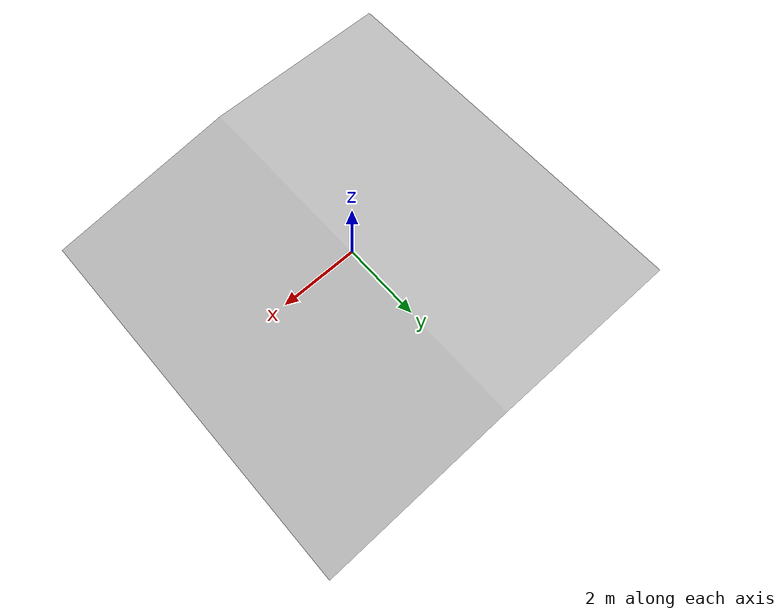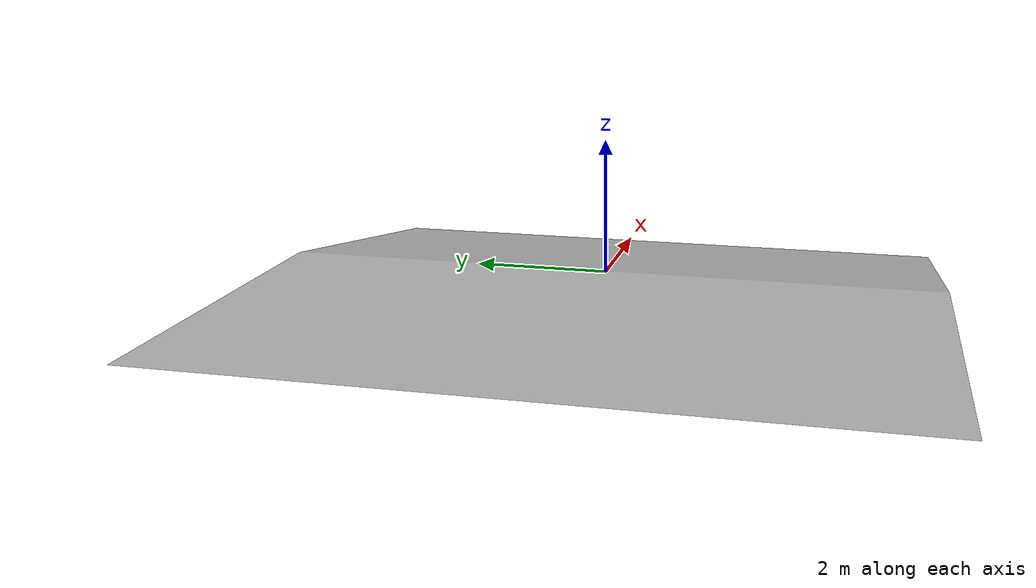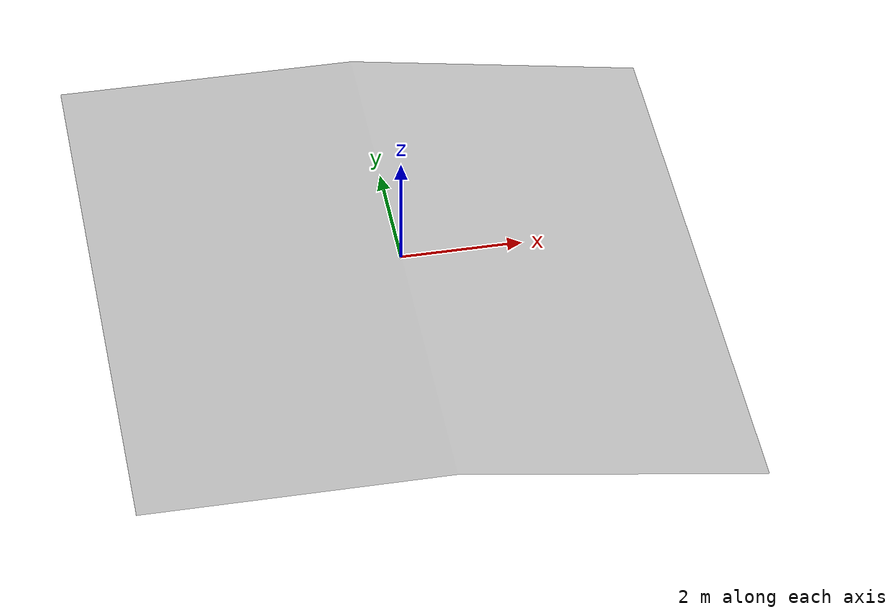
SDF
<?xml version="1.0" ?>
<sdf version="1.6">
  <world name="world">
    <model name="arena_ramp">
      <pose>0.0 0.0 0.0 0.0 0.0 0.0</pose>
      <link name="heightmap">
        <pose>0 0 -0.44081745177116244 0 0 0</pose>
        <collision name="heightmap_collision">
          <pose>0.0 0.0 0.0 0.0 0.0 0.0</pose>
          <geometry>
            <heightmap>
              <uri>meshes/ramp.png</uri>
              <size>10.0 10.0 0.8816349035423249</size>
              <pos>0.0 0.0 0.0</pos>
            </heightmap>
          </geometry>
        </collision>
        <visual name="heightmap_visual">
          <pose>-5.0 -5.0 -0.44081745177116244 0 0 0</pose>
          <geometry>
            <mesh>
              <uri>meshes/ramp.obj</uri>
              <scale>1.0 1.0 1.0</scale>
            </mesh>
          </geometry>
          <material/>
        </visual>
      </link>
    </model>
  </world>
</sdf>
